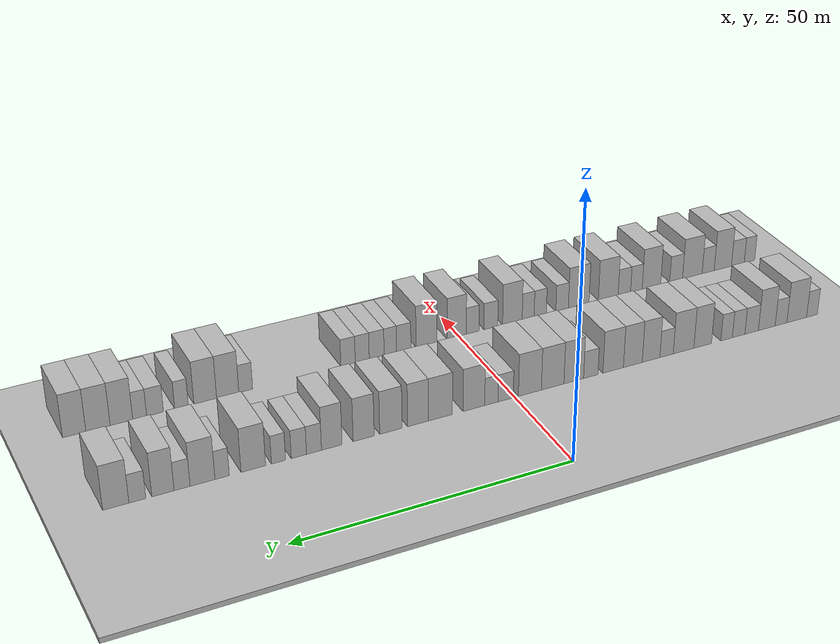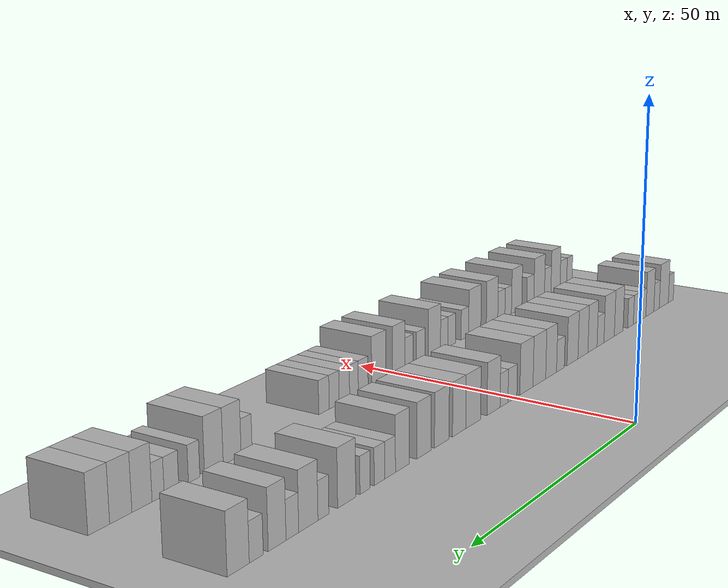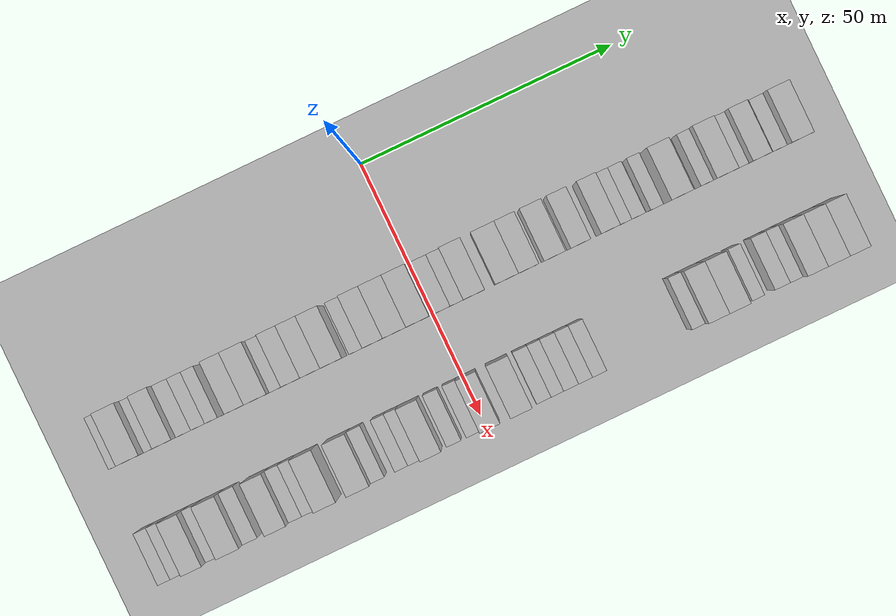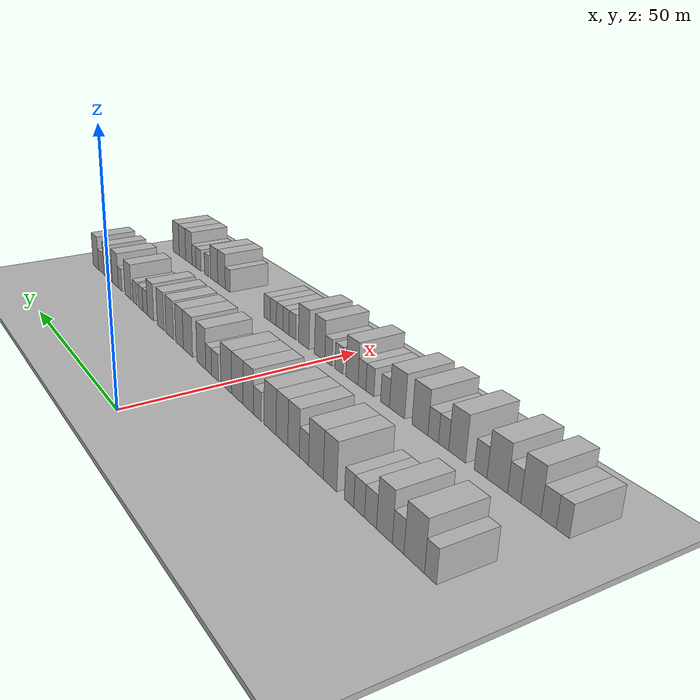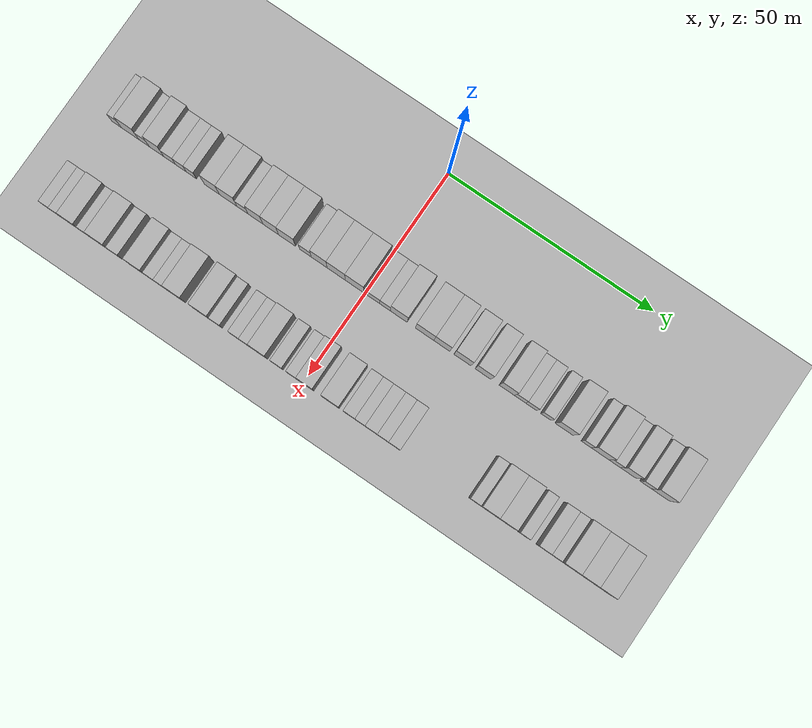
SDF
<sdf version="1.6">
 <world name="default">
  <include><name>ground_plane_1</name><uri>model://HANNAS_ground_plane</uri></include>
  <include>
   <name>ground_plane_2</name>
   <uri>model://HANNAS_ground_plane</uri>
   <pose>100 0 0  0 0 0</pose>
  </include>
  <model name="building_31">
   <static>1</static>
   <pose>25.0000 -61.4542 0 0.000000 0.000000 0.000000</pose>
   <link name="link">
    <pose>0 0 3.00 0 0 0</pose>
    <collision name="collision"><geometry><box><size>10.0000 2.4120 6.0000</size></box></geometry></collision>
    <visual name="visual">
     <cast_shadows>0</cast_shadows>
     <geometry><box><size>10.0000 2.4120 6.0000</size></box></geometry>
     <material>
      <script>
       <uri>model://HANNAS_wall/materials/scripts</uri>
       <uri>model://HANNAS_wall/materials/textures</uri>
       <name>vrc/HANNAS_wall</name>
      </script>
     </material>
    </visual>
   </link>
  </model>
  <model name="building_32">
   <static>1</static>
   <pose>25.0000 -58.0692 0 0.000000 0.000000 0.000000</pose>
   <link name="link">
    <pose>0 0 4.50 0 0 0</pose>
    <collision name="collision"><geometry><box><size>10.0000 4.3581 9.0000</size></box></geometry></collision>
    <visual name="visual">
     <cast_shadows>0</cast_shadows>
     <geometry><box><size>10.0000 4.3581 9.0000</size></box></geometry>
     <material>
      <script>
       <uri>model://HANNAS_wall/materials/scripts</uri>
       <uri>model://HANNAS_wall/materials/textures</uri>
       <name>vrc/HANNAS_wall</name>
      </script>
     </material>
    </visual>
   </link>
  </model>
  <model name="building_33">
   <static>1</static>
   <pose>25.0000 -54.5991 0 0.000000 0.000000 0.000000</pose>
   <link name="link">
    <pose>0 0 3.00 0 0 0</pose>
    <collision name="collision"><geometry><box><size>10.0000 2.5821 6.0000</size></box></geometry></collision>
    <visual name="visual">
     <cast_shadows>0</cast_shadows>
     <geometry><box><size>10.0000 2.5821 6.0000</size></box></geometry>
     <material>
      <script>
       <uri>model://HANNAS_wall/materials/scripts</uri>
       <uri>model://HANNAS_wall/materials/textures</uri>
       <name>vrc/HANNAS_wall</name>
      </script>
     </material>
    </visual>
   </link>
  </model>
  <model name="building_34">
   <static>1</static>
   <pose>25.0000 -51.4746 0 0.000000 0.000000 0.000000</pose>
   <link name="link">
    <pose>0 0 4.50 0 0 0</pose>
    <collision name="collision"><geometry><box><size>10.0000 3.6668 9.0000</size></box></geometry></collision>
    <visual name="visual">
     <cast_shadows>0</cast_shadows>
     <geometry><box><size>10.0000 3.6668 9.0000</size></box></geometry>
     <material>
      <script>
       <uri>model://HANNAS_wall/materials/scripts</uri>
       <uri>model://HANNAS_wall/materials/textures</uri>
       <name>vrc/HANNAS_wall</name>
      </script>
     </material>
    </visual>
   </link>
  </model>
  <model name="building_35">
   <static>1</static>
   <pose>25.0000 -48.1759 0 0.000000 0.000000 0.000000</pose>
   <link name="link">
    <pose>0 0 3.00 0 0 0</pose>
    <collision name="collision"><geometry><box><size>10.0000 2.9306 6.0000</size></box></geometry></collision>
    <visual name="visual">
     <cast_shadows>0</cast_shadows>
     <geometry><box><size>10.0000 2.9306 6.0000</size></box></geometry>
     <material>
      <script>
       <uri>model://HANNAS_wall/materials/scripts</uri>
       <uri>model://HANNAS_wall/materials/textures</uri>
       <name>vrc/HANNAS_wall</name>
      </script>
     </material>
    </visual>
   </link>
  </model>
  <model name="building_36">
   <static>1</static>
   <pose>25.0000 -45.3669 0 0.000000 0.000000 0.000000</pose>
   <link name="link">
    <pose>0 0 3.00 0 0 0</pose>
    <collision name="collision"><geometry><box><size>10.0000 2.6872 6.0000</size></box></geometry></collision>
    <visual name="visual">
     <cast_shadows>0</cast_shadows>
     <geometry><box><size>10.0000 2.6872 6.0000</size></box></geometry>
     <material>
      <script>
       <uri>model://HANNAS_wall/materials/scripts</uri>
       <uri>model://HANNAS_wall/materials/textures</uri>
       <name>vrc/HANNAS_wall</name>
      </script>
     </material>
    </visual>
   </link>
  </model>
  <model name="building_37">
   <static>1</static>
   <pose>25.0000 -42.7870 0 0.000000 0.000000 0.000000</pose>
   <link name="link">
    <pose>0 0 3.00 0 0 0</pose>
    <collision name="collision"><geometry><box><size>10.0000 2.4727 6.0000</size></box></geometry></collision>
    <visual name="visual">
     <cast_shadows>0</cast_shadows>
     <geometry><box><size>10.0000 2.4727 6.0000</size></box></geometry>
     <material>
      <script>
       <uri>model://HANNAS_wall/materials/scripts</uri>
       <uri>model://HANNAS_wall/materials/textures</uri>
       <name>vrc/HANNAS_wall</name>
      </script>
     </material>
    </visual>
   </link>
  </model>
  <model name="building_38">
   <static>1</static>
   <pose>25.0000 -37.6854 0 0.000000 0.000000 0.000000</pose>
   <link name="link">
    <pose>0 0 4.50 0 0 0</pose>
    <collision name="collision"><geometry><box><size>10.0000 3.7306 9.0000</size></box></geometry></collision>
    <visual name="visual">
     <cast_shadows>0</cast_shadows>
     <geometry><box><size>10.0000 3.7306 9.0000</size></box></geometry>
     <material>
      <script>
       <uri>model://HANNAS_wall/materials/scripts</uri>
       <uri>model://HANNAS_wall/materials/textures</uri>
       <name>vrc/HANNAS_wall</name>
      </script>
     </material>
    </visual>
   </link>
  </model>
  <model name="building_39">
   <static>1</static>
   <pose>25.0000 -33.6537 0 0.000000 0.000000 0.000000</pose>
   <link name="link">
    <pose>0 0 4.50 0 0 0</pose>
    <collision name="collision"><geometry><box><size>10.0000 4.3328 9.0000</size></box></geometry></collision>
    <visual name="visual">
     <cast_shadows>0</cast_shadows>
     <geometry><box><size>10.0000 4.3328 9.0000</size></box></geometry>
     <material>
      <script>
       <uri>model://HANNAS_wall/materials/scripts</uri>
       <uri>model://HANNAS_wall/materials/textures</uri>
       <name>vrc/HANNAS_wall</name>
      </script>
     </material>
    </visual>
   </link>
  </model>
  <model name="building_40">
   <static>1</static>
   <pose>25.0000 -30.0961 0 0.000000 0.000000 0.000000</pose>
   <link name="link">
    <pose>0 0 3.00 0 0 0</pose>
    <collision name="collision"><geometry><box><size>10.0000 2.7823 6.0000</size></box></geometry></collision>
    <visual name="visual">
     <cast_shadows>0</cast_shadows>
     <geometry><box><size>10.0000 2.7823 6.0000</size></box></geometry>
     <material>
      <script>
       <uri>model://HANNAS_wall/materials/scripts</uri>
       <uri>model://HANNAS_wall/materials/textures</uri>
       <name>vrc/HANNAS_wall</name>
      </script>
     </material>
    </visual>
   </link>
  </model>
  <model name="building_41">
   <static>1</static>
   <pose>25.0000 -26.8806 0 0.000000 0.000000 0.000000</pose>
   <link name="link">
    <pose>0 0 4.50 0 0 0</pose>
    <collision name="collision"><geometry><box><size>10.0000 3.6487 9.0000</size></box></geometry></collision>
    <visual name="visual">
     <cast_shadows>0</cast_shadows>
     <geometry><box><size>10.0000 3.6487 9.0000</size></box></geometry>
     <material>
      <script>
       <uri>model://HANNAS_wall/materials/scripts</uri>
       <uri>model://HANNAS_wall/materials/textures</uri>
       <name>vrc/HANNAS_wall</name>
      </script>
     </material>
    </visual>
   </link>
  </model>
  <model name="building_42">
   <static>1</static>
   <pose>25.0000 -23.1283 0 0.000000 0.000000 0.000000</pose>
   <link name="link">
    <pose>0 0 4.50 0 0 0</pose>
    <collision name="collision"><geometry><box><size>10.0000 3.8558 9.0000</size></box></geometry></collision>
    <visual name="visual">
     <cast_shadows>0</cast_shadows>
     <geometry><box><size>10.0000 3.8558 9.0000</size></box></geometry>
     <material>
      <script>
       <uri>model://HANNAS_wall/materials/scripts</uri>
       <uri>model://HANNAS_wall/materials/textures</uri>
       <name>vrc/HANNAS_wall</name>
      </script>
     </material>
    </visual>
   </link>
  </model>
  <model name="building_43">
   <static>1</static>
   <pose>25.0000 -19.1201 0 0.000000 0.000000 0.000000</pose>
   <link name="link">
    <pose>0 0 4.50 0 0 0</pose>
    <collision name="collision"><geometry><box><size>10.0000 4.1607 9.0000</size></box></geometry></collision>
    <visual name="visual">
     <cast_shadows>0</cast_shadows>
     <geometry><box><size>10.0000 4.1607 9.0000</size></box></geometry>
     <material>
      <script>
       <uri>model://HANNAS_wall/materials/scripts</uri>
       <uri>model://HANNAS_wall/materials/textures</uri>
       <name>vrc/HANNAS_wall</name>
      </script>
     </material>
    </visual>
   </link>
  </model>
  <model name="building_44">
   <static>1</static>
   <pose>25.0000 -14.6003 0 0.000000 0.000000 0.000000</pose>
   <link name="link">
    <pose>0 0 3.00 0 0 0</pose>
    <collision name="collision"><geometry><box><size>10.0000 2.8789 6.0000</size></box></geometry></collision>
    <visual name="visual">
     <cast_shadows>0</cast_shadows>
     <geometry><box><size>10.0000 2.8789 6.0000</size></box></geometry>
     <material>
      <script>
       <uri>model://HANNAS_wall/materials/scripts</uri>
       <uri>model://HANNAS_wall/materials/textures</uri>
       <name>vrc/HANNAS_wall</name>
      </script>
     </material>
    </visual>
   </link>
  </model>
  <model name="building_45">
   <static>1</static>
   <pose>25.0000 -11.2080 0 0.000000 0.000000 0.000000</pose>
   <link name="link">
    <pose>0 0 4.50 0 0 0</pose>
    <collision name="collision"><geometry><box><size>10.0000 3.9057 9.0000</size></box></geometry></collision>
    <visual name="visual">
     <cast_shadows>0</cast_shadows>
     <geometry><box><size>10.0000 3.9057 9.0000</size></box></geometry>
     <material>
      <script>
       <uri>model://HANNAS_wall/materials/scripts</uri>
       <uri>model://HANNAS_wall/materials/textures</uri>
       <name>vrc/HANNAS_wall</name>
      </script>
     </material>
    </visual>
   </link>
  </model>
  <model name="building_46">
   <static>1</static>
   <pose>25.0000 -7.0304 0 0.000000 0.000000 0.000000</pose>
   <link name="link">
    <pose>0 0 4.50 0 0 0</pose>
    <collision name="collision"><geometry><box><size>10.0000 4.4494 9.0000</size></box></geometry></collision>
    <visual name="visual">
     <cast_shadows>0</cast_shadows>
     <geometry><box><size>10.0000 4.4494 9.0000</size></box></geometry>
     <material>
      <script>
       <uri>model://HANNAS_wall/materials/scripts</uri>
       <uri>model://HANNAS_wall/materials/textures</uri>
       <name>vrc/HANNAS_wall</name>
      </script>
     </material>
    </visual>
   </link>
  </model>
  <model name="building_47">
   <static>1</static>
   <pose>25.0000 -2.5676 0 0.000000 0.000000 0.000000</pose>
   <link name="link">
    <pose>0 0 4.50 0 0 0</pose>
    <collision name="collision"><geometry><box><size>10.0000 4.4762 9.0000</size></box></geometry></collision>
    <visual name="visual">
     <cast_shadows>0</cast_shadows>
     <geometry><box><size>10.0000 4.4762 9.0000</size></box></geometry>
     <material>
      <script>
       <uri>model://HANNAS_wall/materials/scripts</uri>
       <uri>model://HANNAS_wall/materials/textures</uri>
       <name>vrc/HANNAS_wall</name>
      </script>
     </material>
    </visual>
   </link>
  </model>
  <model name="building_48">
   <static>1</static>
   <pose>25.0000 2.1394 0 0.000000 0.000000 0.000000</pose>
   <link name="link">
    <pose>0 0 3.00 0 0 0</pose>
    <collision name="collision"><geometry><box><size>10.0000 2.9378 6.0000</size></box></geometry></collision>
    <visual name="visual">
     <cast_shadows>0</cast_shadows>
     <geometry><box><size>10.0000 2.9378 6.0000</size></box></geometry>
     <material>
      <script>
       <uri>model://HANNAS_wall/materials/scripts</uri>
       <uri>model://HANNAS_wall/materials/textures</uri>
       <name>vrc/HANNAS_wall</name>
      </script>
     </material>
    </visual>
   </link>
  </model>
  <model name="building_49">
   <static>1</static>
   <pose>25.0000 4.8917 0 0.000000 0.000000 0.000000</pose>
   <link name="link">
    <pose>0 0 3.00 0 0 0</pose>
    <collision name="collision"><geometry><box><size>10.0000 2.5667 6.0000</size></box></geometry></collision>
    <visual name="visual">
     <cast_shadows>0</cast_shadows>
     <geometry><box><size>10.0000 2.5667 6.0000</size></box></geometry>
     <material>
      <script>
       <uri>model://HANNAS_wall/materials/scripts</uri>
       <uri>model://HANNAS_wall/materials/textures</uri>
       <name>vrc/HANNAS_wall</name>
      </script>
     </material>
    </visual>
   </link>
  </model>
  <model name="building_50">
   <static>1</static>
   <pose>25.0000 8.2330 0 0.000000 0.000000 0.000000</pose>
   <link name="link">
    <pose>0 0 4.50 0 0 0</pose>
    <collision name="collision"><geometry><box><size>10.0000 4.1159 9.0000</size></box></geometry></collision>
    <visual name="visual">
     <cast_shadows>0</cast_shadows>
     <geometry><box><size>10.0000 4.1159 9.0000</size></box></geometry>
     <material>
      <script>
       <uri>model://HANNAS_wall/materials/scripts</uri>
       <uri>model://HANNAS_wall/materials/textures</uri>
       <name>vrc/HANNAS_wall</name>
      </script>
     </material>
    </visual>
   </link>
  </model>
  <model name="building_51">
   <static>1</static>
   <pose>25.0000 14.5371 0 0.000000 0.000000 0.000000</pose>
   <link name="link">
    <pose>0 0 4.50 0 0 0</pose>
    <collision name="collision"><geometry><box><size>10.0000 4.4922 9.0000</size></box></geometry></collision>
    <visual name="visual">
     <cast_shadows>0</cast_shadows>
     <geometry><box><size>10.0000 4.4922 9.0000</size></box></geometry>
     <material>
      <script>
       <uri>model://HANNAS_wall/materials/scripts</uri>
       <uri>model://HANNAS_wall/materials/textures</uri>
       <name>vrc/HANNAS_wall</name>
      </script>
     </material>
    </visual>
   </link>
  </model>
  <model name="building_52">
   <static>1</static>
   <pose>25.0000 18.7161 0 0.000000 0.000000 0.000000</pose>
   <link name="link">
    <pose>0 0 4.50 0 0 0</pose>
    <collision name="collision"><geometry><box><size>10.0000 3.8659 9.0000</size></box></geometry></collision>
    <visual name="visual">
     <cast_shadows>0</cast_shadows>
     <geometry><box><size>10.0000 3.8659 9.0000</size></box></geometry>
     <material>
      <script>
       <uri>model://HANNAS_wall/materials/scripts</uri>
       <uri>model://HANNAS_wall/materials/textures</uri>
       <name>vrc/HANNAS_wall</name>
      </script>
     </material>
    </visual>
   </link>
  </model>
  <model name="building_53">
   <static>1</static>
   <pose>25.0000 23.7026 0 0.000000 0.000000 0.000000</pose>
   <link name="link">
    <pose>0 0 4.50 0 0 0</pose>
    <collision name="collision"><geometry><box><size>10.0000 4.1071 9.0000</size></box></geometry></collision>
    <visual name="visual">
     <cast_shadows>0</cast_shadows>
     <geometry><box><size>10.0000 4.1071 9.0000</size></box></geometry>
     <material>
      <script>
       <uri>model://HANNAS_wall/materials/scripts</uri>
       <uri>model://HANNAS_wall/materials/textures</uri>
       <name>vrc/HANNAS_wall</name>
      </script>
     </material>
    </visual>
   </link>
  </model>
  <model name="building_54">
   <static>1</static>
   <pose>25.0000 28.6602 0 0.000000 0.000000 0.000000</pose>
   <link name="link">
    <pose>0 0 4.50 0 0 0</pose>
    <collision name="collision"><geometry><box><size>10.0000 3.8081 9.0000</size></box></geometry></collision>
    <visual name="visual">
     <cast_shadows>0</cast_shadows>
     <geometry><box><size>10.0000 3.8081 9.0000</size></box></geometry>
     <material>
      <script>
       <uri>model://HANNAS_wall/materials/scripts</uri>
       <uri>model://HANNAS_wall/materials/textures</uri>
       <name>vrc/HANNAS_wall</name>
      </script>
     </material>
    </visual>
   </link>
  </model>
  <model name="building_55">
   <static>1</static>
   <pose>25.0000 34.3978 0 0.000000 0.000000 0.000000</pose>
   <link name="link">
    <pose>0 0 4.50 0 0 0</pose>
    <collision name="collision"><geometry><box><size>10.0000 3.6669 9.0000</size></box></geometry></collision>
    <visual name="visual">
     <cast_shadows>0</cast_shadows>
     <geometry><box><size>10.0000 3.6669 9.0000</size></box></geometry>
     <material>
      <script>
       <uri>model://HANNAS_wall/materials/scripts</uri>
       <uri>model://HANNAS_wall/materials/textures</uri>
       <name>vrc/HANNAS_wall</name>
      </script>
     </material>
    </visual>
   </link>
  </model>
  <model name="building_56">
   <static>1</static>
   <pose>25.0000 37.5584 0 0.000000 0.000000 0.000000</pose>
   <link name="link">
    <pose>0 0 3.00 0 0 0</pose>
    <collision name="collision"><geometry><box><size>10.0000 2.6543 6.0000</size></box></geometry></collision>
    <visual name="visual">
     <cast_shadows>0</cast_shadows>
     <geometry><box><size>10.0000 2.6543 6.0000</size></box></geometry>
     <material>
      <script>
       <uri>model://HANNAS_wall/materials/scripts</uri>
       <uri>model://HANNAS_wall/materials/textures</uri>
       <name>vrc/HANNAS_wall</name>
      </script>
     </material>
    </visual>
   </link>
  </model>
  <model name="building_57">
   <static>1</static>
   <pose>25.0000 40.2219 0 0.000000 0.000000 0.000000</pose>
   <link name="link">
    <pose>0 0 3.00 0 0 0</pose>
    <collision name="collision"><geometry><box><size>10.0000 2.6727 6.0000</size></box></geometry></collision>
    <visual name="visual">
     <cast_shadows>0</cast_shadows>
     <geometry><box><size>10.0000 2.6727 6.0000</size></box></geometry>
     <material>
      <script>
       <uri>model://HANNAS_wall/materials/scripts</uri>
       <uri>model://HANNAS_wall/materials/textures</uri>
       <name>vrc/HANNAS_wall</name>
      </script>
     </material>
    </visual>
   </link>
  </model>
  <model name="building_58">
   <static>1</static>
   <pose>25.0000 43.7932 0 0.000000 0.000000 0.000000</pose>
   <link name="link">
    <pose>0 0 3.00 0 0 0</pose>
    <collision name="collision"><geometry><box><size>10.0000 2.4699 6.0000</size></box></geometry></collision>
    <visual name="visual">
     <cast_shadows>0</cast_shadows>
     <geometry><box><size>10.0000 2.4699 6.0000</size></box></geometry>
     <material>
      <script>
       <uri>model://HANNAS_wall/materials/scripts</uri>
       <uri>model://HANNAS_wall/materials/textures</uri>
       <name>vrc/HANNAS_wall</name>
      </script>
     </material>
    </visual>
   </link>
  </model>
  <model name="building_59">
   <static>1</static>
   <pose>25.0000 48.1494 0 0.000000 0.000000 0.000000</pose>
   <link name="link">
    <pose>0 0 4.50 0 0 0</pose>
    <collision name="collision"><geometry><box><size>10.0000 4.2424 9.0000</size></box></geometry></collision>
    <visual name="visual">
     <cast_shadows>0</cast_shadows>
     <geometry><box><size>10.0000 4.2424 9.0000</size></box></geometry>
     <material>
      <script>
       <uri>model://HANNAS_wall/materials/scripts</uri>
       <uri>model://HANNAS_wall/materials/textures</uri>
       <name>vrc/HANNAS_wall</name>
      </script>
     </material>
    </visual>
   </link>
  </model>
  <model name="building_60">
   <static>1</static>
   <pose>25.0000 53.4902 0 0.000000 0.000000 0.000000</pose>
   <link name="link">
    <pose>0 0 3.00 0 0 0</pose>
    <collision name="collision"><geometry><box><size>10.0000 2.4393 6.0000</size></box></geometry></collision>
    <visual name="visual">
     <cast_shadows>0</cast_shadows>
     <geometry><box><size>10.0000 2.4393 6.0000</size></box></geometry>
     <material>
      <script>
       <uri>model://HANNAS_wall/materials/scripts</uri>
       <uri>model://HANNAS_wall/materials/textures</uri>
       <name>vrc/HANNAS_wall</name>
      </script>
     </material>
    </visual>
   </link>
  </model>
  <model name="building_61">
   <static>1</static>
   <pose>25.0000 56.8058 0 0.000000 0.000000 0.000000</pose>
   <link name="link">
    <pose>0 0 4.50 0 0 0</pose>
    <collision name="collision"><geometry><box><size>10.0000 4.1919 9.0000</size></box></geometry></collision>
    <visual name="visual">
     <cast_shadows>0</cast_shadows>
     <geometry><box><size>10.0000 4.1919 9.0000</size></box></geometry>
     <material>
      <script>
       <uri>model://HANNAS_wall/materials/scripts</uri>
       <uri>model://HANNAS_wall/materials/textures</uri>
       <name>vrc/HANNAS_wall</name>
      </script>
     </material>
    </visual>
   </link>
  </model>
  <model name="building_62">
   <static>1</static>
   <pose>25.0000 60.2417 0 0.000000 0.000000 0.000000</pose>
   <link name="link">
    <pose>0 0 3.00 0 0 0</pose>
    <collision name="collision"><geometry><box><size>10.0000 2.6799 6.0000</size></box></geometry></collision>
    <visual name="visual">
     <cast_shadows>0</cast_shadows>
     <geometry><box><size>10.0000 2.6799 6.0000</size></box></geometry>
     <material>
      <script>
       <uri>model://HANNAS_wall/materials/scripts</uri>
       <uri>model://HANNAS_wall/materials/textures</uri>
       <name>vrc/HANNAS_wall</name>
      </script>
     </material>
    </visual>
   </link>
  </model>
  <model name="building_63">
   <static>1</static>
   <pose>25.0000 63.4194 0 0.000000 0.000000 0.000000</pose>
   <link name="link">
    <pose>0 0 4.50 0 0 0</pose>
    <collision name="collision"><geometry><box><size>10.0000 3.6755 9.0000</size></box></geometry></collision>
    <visual name="visual">
     <cast_shadows>0</cast_shadows>
     <geometry><box><size>10.0000 3.6755 9.0000</size></box></geometry>
     <material>
      <script>
       <uri>model://HANNAS_wall/materials/scripts</uri>
       <uri>model://HANNAS_wall/materials/textures</uri>
       <name>vrc/HANNAS_wall</name>
      </script>
     </material>
    </visual>
   </link>
  </model>
  <model name="building_64">
   <static>1</static>
   <pose>25.0000 67.6411 0 0.000000 0.000000 0.000000</pose>
   <link name="link">
    <pose>0 0 3.00 0 0 0</pose>
    <collision name="collision"><geometry><box><size>10.0000 2.7679 6.0000</size></box></geometry></collision>
    <visual name="visual">
     <cast_shadows>0</cast_shadows>
     <geometry><box><size>10.0000 2.7679 6.0000</size></box></geometry>
     <material>
      <script>
       <uri>model://HANNAS_wall/materials/scripts</uri>
       <uri>model://HANNAS_wall/materials/textures</uri>
       <name>vrc/HANNAS_wall</name>
      </script>
     </material>
    </visual>
   </link>
  </model>
  <model name="building_65">
   <static>1</static>
   <pose>25.0000 71.1598 0 0.000000 0.000000 0.000000</pose>
   <link name="link">
    <pose>0 0 4.50 0 0 0</pose>
    <collision name="collision"><geometry><box><size>10.0000 4.2696 9.0000</size></box></geometry></collision>
    <visual name="visual">
     <cast_shadows>0</cast_shadows>
     <geometry><box><size>10.0000 4.2696 9.0000</size></box></geometry>
     <material>
      <script>
       <uri>model://HANNAS_wall/materials/scripts</uri>
       <uri>model://HANNAS_wall/materials/textures</uri>
       <name>vrc/HANNAS_wall</name>
      </script>
     </material>
    </visual>
   </link>
  </model>
  <model name="building_141">
   <static>1</static>
   <pose>47.0000 -62.4681 0 0.000000 0.000000 0.000000</pose>
   <link name="link">
    <pose>0 0 3.00 0 0 0</pose>
    <collision name="collision"><geometry><box><size>10.0000 2.4110 6.0000</size></box></geometry></collision>
    <visual name="visual">
     <cast_shadows>0</cast_shadows>
     <geometry><box><size>10.0000 2.4110 6.0000</size></box></geometry>
     <material>
      <script>
       <uri>model://HANNAS_wall/materials/scripts</uri>
       <uri>model://HANNAS_wall/materials/textures</uri>
       <name>vrc/HANNAS_wall</name>
      </script>
     </material>
    </visual>
   </link>
  </model>
  <model name="building_142">
   <static>1</static>
   <pose>47.0000 -59.7925 0 0.000000 0.000000 0.000000</pose>
   <link name="link">
    <pose>0 0 3.00 0 0 0</pose>
    <collision name="collision"><geometry><box><size>10.0000 2.9401 6.0000</size></box></geometry></collision>
    <visual name="visual">
     <cast_shadows>0</cast_shadows>
     <geometry><box><size>10.0000 2.9401 6.0000</size></box></geometry>
     <material>
      <script>
       <uri>model://HANNAS_wall/materials/scripts</uri>
       <uri>model://HANNAS_wall/materials/textures</uri>
       <name>vrc/HANNAS_wall</name>
      </script>
     </material>
    </visual>
   </link>
  </model>
  <model name="building_143">
   <static>1</static>
   <pose>47.0000 -56.3538 0 0.000000 0.000000 0.000000</pose>
   <link name="link">
    <pose>0 0 4.50 0 0 0</pose>
    <collision name="collision"><geometry><box><size>10.0000 3.9374 9.0000</size></box></geometry></collision>
    <visual name="visual">
     <cast_shadows>0</cast_shadows>
     <geometry><box><size>10.0000 3.9374 9.0000</size></box></geometry>
     <material>
      <script>
       <uri>model://HANNAS_wall/materials/scripts</uri>
       <uri>model://HANNAS_wall/materials/textures</uri>
       <name>vrc/HANNAS_wall</name>
      </script>
     </material>
    </visual>
   </link>
  </model>
  <model name="building_144">
   <static>1</static>
   <pose>47.0000 -53.0163 0 0.000000 0.000000 0.000000</pose>
   <link name="link">
    <pose>0 0 3.00 0 0 0</pose>
    <collision name="collision"><geometry><box><size>10.0000 2.7375 6.0000</size></box></geometry></collision>
    <visual name="visual">
     <cast_shadows>0</cast_shadows>
     <geometry><box><size>10.0000 2.7375 6.0000</size></box></geometry>
     <material>
      <script>
       <uri>model://HANNAS_wall/materials/scripts</uri>
       <uri>model://HANNAS_wall/materials/textures</uri>
       <name>vrc/HANNAS_wall</name>
      </script>
     </material>
    </visual>
   </link>
  </model>
  <model name="building_145">
   <static>1</static>
   <pose>47.0000 -49.4365 0 0.000000 0.000000 0.000000</pose>
   <link name="link">
    <pose>0 0 4.50 0 0 0</pose>
    <collision name="collision"><geometry><box><size>10.0000 4.4221 9.0000</size></box></geometry></collision>
    <visual name="visual">
     <cast_shadows>0</cast_shadows>
     <geometry><box><size>10.0000 4.4221 9.0000</size></box></geometry>
     <material>
      <script>
       <uri>model://HANNAS_wall/materials/scripts</uri>
       <uri>model://HANNAS_wall/materials/textures</uri>
       <name>vrc/HANNAS_wall</name>
      </script>
     </material>
    </visual>
   </link>
  </model>
  <model name="building_146">
   <static>1</static>
   <pose>47.0000 -45.7912 0 0.000000 0.000000 0.000000</pose>
   <link name="link">
    <pose>0 0 3.00 0 0 0</pose>
    <collision name="collision"><geometry><box><size>10.0000 2.8685 6.0000</size></box></geometry></collision>
    <visual name="visual">
     <cast_shadows>0</cast_shadows>
     <geometry><box><size>10.0000 2.8685 6.0000</size></box></geometry>
     <material>
      <script>
       <uri>model://HANNAS_wall/materials/scripts</uri>
       <uri>model://HANNAS_wall/materials/textures</uri>
       <name>vrc/HANNAS_wall</name>
      </script>
     </material>
    </visual>
   </link>
  </model>
  <model name="building_147">
   <static>1</static>
   <pose>47.0000 -40.3137 0 0.000000 0.000000 0.000000</pose>
   <link name="link">
    <pose>0 0 4.50 0 0 0</pose>
    <collision name="collision"><geometry><box><size>10.0000 4.0865 9.0000</size></box></geometry></collision>
    <visual name="visual">
     <cast_shadows>0</cast_shadows>
     <geometry><box><size>10.0000 4.0865 9.0000</size></box></geometry>
     <material>
      <script>
       <uri>model://HANNAS_wall/materials/scripts</uri>
       <uri>model://HANNAS_wall/materials/textures</uri>
       <name>vrc/HANNAS_wall</name>
      </script>
     </material>
    </visual>
   </link>
  </model>
  <model name="building_148">
   <static>1</static>
   <pose>47.0000 -36.9981 0 0.000000 0.000000 0.000000</pose>
   <link name="link">
    <pose>0 0 3.00 0 0 0</pose>
    <collision name="collision"><geometry><box><size>10.0000 2.5446 6.0000</size></box></geometry></collision>
    <visual name="visual">
     <cast_shadows>0</cast_shadows>
     <geometry><box><size>10.0000 2.5446 6.0000</size></box></geometry>
     <material>
      <script>
       <uri>model://HANNAS_wall/materials/scripts</uri>
       <uri>model://HANNAS_wall/materials/textures</uri>
       <name>vrc/HANNAS_wall</name>
      </script>
     </material>
    </visual>
   </link>
  </model>
  <model name="building_149">
   <static>1</static>
   <pose>47.0000 -34.3710 0 0.000000 0.000000 0.000000</pose>
   <link name="link">
    <pose>0 0 3.00 0 0 0</pose>
    <collision name="collision"><geometry><box><size>10.0000 2.7097 6.0000</size></box></geometry></collision>
    <visual name="visual">
     <cast_shadows>0</cast_shadows>
     <geometry><box><size>10.0000 2.7097 6.0000</size></box></geometry>
     <material>
      <script>
       <uri>model://HANNAS_wall/materials/scripts</uri>
       <uri>model://HANNAS_wall/materials/textures</uri>
       <name>vrc/HANNAS_wall</name>
      </script>
     </material>
    </visual>
   </link>
  </model>
  <model name="building_150">
   <static>1</static>
   <pose>47.0000 -30.8762 0 0.000000 0.000000 0.000000</pose>
   <link name="link">
    <pose>0 0 4.50 0 0 0</pose>
    <collision name="collision"><geometry><box><size>10.0000 4.2799 9.0000</size></box></geometry></collision>
    <visual name="visual">
     <cast_shadows>0</cast_shadows>
     <geometry><box><size>10.0000 4.2799 9.0000</size></box></geometry>
     <material>
      <script>
       <uri>model://HANNAS_wall/materials/scripts</uri>
       <uri>model://HANNAS_wall/materials/textures</uri>
       <name>vrc/HANNAS_wall</name>
      </script>
     </material>
    </visual>
   </link>
  </model>
  <model name="building_151">
   <static>1</static>
   <pose>47.0000 -24.5383 0 0.000000 0.000000 0.000000</pose>
   <link name="link">
    <pose>0 0 4.50 0 0 0</pose>
    <collision name="collision"><geometry><box><size>10.0000 4.3958 9.0000</size></box></geometry></collision>
    <visual name="visual">
     <cast_shadows>0</cast_shadows>
     <geometry><box><size>10.0000 4.3958 9.0000</size></box></geometry>
     <material>
      <script>
       <uri>model://HANNAS_wall/materials/scripts</uri>
       <uri>model://HANNAS_wall/materials/textures</uri>
       <name>vrc/HANNAS_wall</name>
      </script>
     </material>
    </visual>
   </link>
  </model>
  <model name="building_152">
   <static>1</static>
   <pose>47.0000 -21.0120 0 0.000000 0.000000 0.000000</pose>
   <link name="link">
    <pose>0 0 3.00 0 0 0</pose>
    <collision name="collision"><geometry><box><size>10.0000 2.6568 6.0000</size></box></geometry></collision>
    <visual name="visual">
     <cast_shadows>0</cast_shadows>
     <geometry><box><size>10.0000 2.6568 6.0000</size></box></geometry>
     <material>
      <script>
       <uri>model://HANNAS_wall/materials/scripts</uri>
       <uri>model://HANNAS_wall/materials/textures</uri>
       <name>vrc/HANNAS_wall</name>
      </script>
     </material>
    </visual>
   </link>
  </model>
  <model name="building_153">
   <static>1</static>
   <pose>47.0000 -16.4037 0 0.000000 0.000000 0.000000</pose>
   <link name="link">
    <pose>0 0 3.00 0 0 0</pose>
    <collision name="collision"><geometry><box><size>10.0000 2.5599 6.0000</size></box></geometry></collision>
    <visual name="visual">
     <cast_shadows>0</cast_shadows>
     <geometry><box><size>10.0000 2.5599 6.0000</size></box></geometry>
     <material>
      <script>
       <uri>model://HANNAS_wall/materials/scripts</uri>
       <uri>model://HANNAS_wall/materials/textures</uri>
       <name>vrc/HANNAS_wall</name>
      </script>
     </material>
    </visual>
   </link>
  </model>
  <model name="building_154">
   <static>1</static>
   <pose>47.0000 -13.8777 0 0.000000 0.000000 0.000000</pose>
   <link name="link">
    <pose>0 0 3.00 0 0 0</pose>
    <collision name="collision"><geometry><box><size>10.0000 2.4921 6.0000</size></box></geometry></collision>
    <visual name="visual">
     <cast_shadows>0</cast_shadows>
     <geometry><box><size>10.0000 2.4921 6.0000</size></box></geometry>
     <material>
      <script>
       <uri>model://HANNAS_wall/materials/scripts</uri>
       <uri>model://HANNAS_wall/materials/textures</uri>
       <name>vrc/HANNAS_wall</name>
      </script>
     </material>
    </visual>
   </link>
  </model>
  <model name="building_155">
   <static>1</static>
   <pose>47.0000 -10.6126 0 0.000000 0.000000 0.000000</pose>
   <link name="link">
    <pose>0 0 4.50 0 0 0</pose>
    <collision name="collision"><geometry><box><size>10.0000 4.0379 9.0000</size></box></geometry></collision>
    <visual name="visual">
     <cast_shadows>0</cast_shadows>
     <geometry><box><size>10.0000 4.0379 9.0000</size></box></geometry>
     <material>
      <script>
       <uri>model://HANNAS_wall/materials/scripts</uri>
       <uri>model://HANNAS_wall/materials/textures</uri>
       <name>vrc/HANNAS_wall</name>
      </script>
     </material>
    </visual>
   </link>
  </model>
  <model name="building_156">
   <static>1</static>
   <pose>47.0000 -6.1917 0 0.000000 0.000000 0.000000</pose>
   <link name="link">
    <pose>0 0 3.00 0 0 0</pose>
    <collision name="collision"><geometry><box><size>10.0000 2.8040 6.0000</size></box></geometry></collision>
    <visual name="visual">
     <cast_shadows>0</cast_shadows>
     <geometry><box><size>10.0000 2.8040 6.0000</size></box></geometry>
     <material>
      <script>
       <uri>model://HANNAS_wall/materials/scripts</uri>
       <uri>model://HANNAS_wall/materials/textures</uri>
       <name>vrc/HANNAS_wall</name>
      </script>
     </material>
    </visual>
   </link>
  </model>
  <model name="building_157">
   <static>1</static>
   <pose>47.0000 -2.4931 0 0.000000 0.000000 0.000000</pose>
   <link name="link">
    <pose>0 0 3.00 0 0 0</pose>
    <collision name="collision"><geometry><box><size>10.0000 2.5930 6.0000</size></box></geometry></collision>
    <visual name="visual">
     <cast_shadows>0</cast_shadows>
     <geometry><box><size>10.0000 2.5930 6.0000</size></box></geometry>
     <material>
      <script>
       <uri>model://HANNAS_wall/materials/scripts</uri>
       <uri>model://HANNAS_wall/materials/textures</uri>
       <name>vrc/HANNAS_wall</name>
      </script>
     </material>
    </visual>
   </link>
  </model>
  <model name="building_158">
   <static>1</static>
   <pose>47.0000 0.7447 0 0.000000 0.000000 0.000000</pose>
   <link name="link">
    <pose>0 0 4.50 0 0 0</pose>
    <collision name="collision"><geometry><box><size>10.0000 3.8827 9.0000</size></box></geometry></collision>
    <visual name="visual">
     <cast_shadows>0</cast_shadows>
     <geometry><box><size>10.0000 3.8827 9.0000</size></box></geometry>
     <material>
      <script>
       <uri>model://HANNAS_wall/materials/scripts</uri>
       <uri>model://HANNAS_wall/materials/textures</uri>
       <name>vrc/HANNAS_wall</name>
      </script>
     </material>
    </visual>
   </link>
  </model>
  <model name="building_159">
   <static>1</static>
   <pose>47.0000 6.7826 0 0.000000 0.000000 0.000000</pose>
   <link name="link">
    <pose>0 0 4.50 0 0 0</pose>
    <collision name="collision"><geometry><box><size>10.0000 4.1931 9.0000</size></box></geometry></collision>
    <visual name="visual">
     <cast_shadows>0</cast_shadows>
     <geometry><box><size>10.0000 4.1931 9.0000</size></box></geometry>
     <material>
      <script>
       <uri>model://HANNAS_wall/materials/scripts</uri>
       <uri>model://HANNAS_wall/materials/textures</uri>
       <name>vrc/HANNAS_wall</name>
      </script>
     </material>
    </visual>
   </link>
  </model>
  <model name="building_160">
   <static>1</static>
   <pose>47.0000 11.2825 0 0.000000 0.000000 0.000000</pose>
   <link name="link">
    <pose>0 0 3.00 0 0 0</pose>
    <collision name="collision"><geometry><box><size>10.0000 2.8067 6.0000</size></box></geometry></collision>
    <visual name="visual">
     <cast_shadows>0</cast_shadows>
     <geometry><box><size>10.0000 2.8067 6.0000</size></box></geometry>
     <material>
      <script>
       <uri>model://HANNAS_wall/materials/scripts</uri>
       <uri>model://HANNAS_wall/materials/textures</uri>
       <name>vrc/HANNAS_wall</name>
      </script>
     </material>
    </visual>
   </link>
  </model>
  <model name="building_161">
   <static>1</static>
   <pose>47.0000 13.9107 0 0.000000 0.000000 0.000000</pose>
   <link name="link">
    <pose>0 0 3.00 0 0 0</pose>
    <collision name="collision"><geometry><box><size>10.0000 2.4496 6.0000</size></box></geometry></collision>
    <visual name="visual">
     <cast_shadows>0</cast_shadows>
     <geometry><box><size>10.0000 2.4496 6.0000</size></box></geometry>
     <material>
      <script>
       <uri>model://HANNAS_wall/materials/scripts</uri>
       <uri>model://HANNAS_wall/materials/textures</uri>
       <name>vrc/HANNAS_wall</name>
      </script>
     </material>
    </visual>
   </link>
  </model>
  <model name="building_162">
   <static>1</static>
   <pose>47.0000 16.5865 0 0.000000 0.000000 0.000000</pose>
   <link name="link">
    <pose>0 0 3.00 0 0 0</pose>
    <collision name="collision"><geometry><box><size>10.0000 2.9019 6.0000</size></box></geometry></collision>
    <visual name="visual">
     <cast_shadows>0</cast_shadows>
     <geometry><box><size>10.0000 2.9019 6.0000</size></box></geometry>
     <material>
      <script>
       <uri>model://HANNAS_wall/materials/scripts</uri>
       <uri>model://HANNAS_wall/materials/textures</uri>
       <name>vrc/HANNAS_wall</name>
      </script>
     </material>
    </visual>
   </link>
  </model>
  <model name="building_163">
   <static>1</static>
   <pose>47.0000 19.3811 0 0.000000 0.000000 0.000000</pose>
   <link name="link">
    <pose>0 0 3.00 0 0 0</pose>
    <collision name="collision"><geometry><box><size>10.0000 2.6873 6.0000</size></box></geometry></collision>
    <visual name="visual">
     <cast_shadows>0</cast_shadows>
     <geometry><box><size>10.0000 2.6873 6.0000</size></box></geometry>
     <material>
      <script>
       <uri>model://HANNAS_wall/materials/scripts</uri>
       <uri>model://HANNAS_wall/materials/textures</uri>
       <name>vrc/HANNAS_wall</name>
      </script>
     </material>
    </visual>
   </link>
  </model>
  <model name="building_164">
   <static>1</static>
   <pose>47.0000 22.1163 0 0.000000 0.000000 0.000000</pose>
   <link name="link">
    <pose>0 0 3.00 0 0 0</pose>
    <collision name="collision"><geometry><box><size>10.0000 2.7832 6.0000</size></box></geometry></collision>
    <visual name="visual">
     <cast_shadows>0</cast_shadows>
     <geometry><box><size>10.0000 2.7832 6.0000</size></box></geometry>
     <material>
      <script>
       <uri>model://HANNAS_wall/materials/scripts</uri>
       <uri>model://HANNAS_wall/materials/textures</uri>
       <name>vrc/HANNAS_wall</name>
      </script>
     </material>
    </visual>
   </link>
  </model>
  <model name="building_165">
   <static>1</static>
   <pose>47.0000 41.3169 0 0.000000 0.000000 0.000000</pose>
   <link name="link">
    <pose>0 0 3.00 0 0 0</pose>
    <collision name="collision"><geometry><box><size>10.0000 2.5393 6.0000</size></box></geometry></collision>
    <visual name="visual">
     <cast_shadows>0</cast_shadows>
     <geometry><box><size>10.0000 2.5393 6.0000</size></box></geometry>
     <material>
      <script>
       <uri>model://HANNAS_wall/materials/scripts</uri>
       <uri>model://HANNAS_wall/materials/textures</uri>
       <name>vrc/HANNAS_wall</name>
      </script>
     </material>
    </visual>
   </link>
  </model>
  <model name="building_166">
   <static>1</static>
   <pose>47.0000 44.6079 0 0.000000 0.000000 0.000000</pose>
   <link name="link">
    <pose>0 0 4.50 0 0 0</pose>
    <collision name="collision"><geometry><box><size>10.0000 4.0427 9.0000</size></box></geometry></collision>
    <visual name="visual">
     <cast_shadows>0</cast_shadows>
     <geometry><box><size>10.0000 4.0427 9.0000</size></box></geometry>
     <material>
      <script>
       <uri>model://HANNAS_wall/materials/scripts</uri>
       <uri>model://HANNAS_wall/materials/textures</uri>
       <name>vrc/HANNAS_wall</name>
      </script>
     </material>
    </visual>
   </link>
  </model>
  <model name="building_167">
   <static>1</static>
   <pose>47.0000 48.6747 0 0.000000 0.000000 0.000000</pose>
   <link name="link">
    <pose>0 0 4.50 0 0 0</pose>
    <collision name="collision"><geometry><box><size>10.0000 4.0909 9.0000</size></box></geometry></collision>
    <visual name="visual">
     <cast_shadows>0</cast_shadows>
     <geometry><box><size>10.0000 4.0909 9.0000</size></box></geometry>
     <material>
      <script>
       <uri>model://HANNAS_wall/materials/scripts</uri>
       <uri>model://HANNAS_wall/materials/textures</uri>
       <name>vrc/HANNAS_wall</name>
      </script>
     </material>
    </visual>
   </link>
  </model>
  <model name="building_168">
   <static>1</static>
   <pose>47.0000 52.9287 0 0.000000 0.000000 0.000000</pose>
   <link name="link">
    <pose>0 0 3.00 0 0 0</pose>
    <collision name="collision"><geometry><box><size>10.0000 2.4172 6.0000</size></box></geometry></collision>
    <visual name="visual">
     <cast_shadows>0</cast_shadows>
     <geometry><box><size>10.0000 2.4172 6.0000</size></box></geometry>
     <material>
      <script>
       <uri>model://HANNAS_wall/materials/scripts</uri>
       <uri>model://HANNAS_wall/materials/textures</uri>
       <name>vrc/HANNAS_wall</name>
      </script>
     </material>
    </visual>
   </link>
  </model>
  <model name="building_169">
   <static>1</static>
   <pose>47.0000 57.6227 0 0.000000 0.000000 0.000000</pose>
   <link name="link">
    <pose>0 0 3.00 0 0 0</pose>
    <collision name="collision"><geometry><box><size>10.0000 2.9707 6.0000</size></box></geometry></collision>
    <visual name="visual">
     <cast_shadows>0</cast_shadows>
     <geometry><box><size>10.0000 2.9707 6.0000</size></box></geometry>
     <material>
      <script>
       <uri>model://HANNAS_wall/materials/scripts</uri>
       <uri>model://HANNAS_wall/materials/textures</uri>
       <name>vrc/HANNAS_wall</name>
      </script>
     </material>
    </visual>
   </link>
  </model>
  <model name="building_170">
   <static>1</static>
   <pose>47.0000 60.3257 0 0.000000 0.000000 0.000000</pose>
   <link name="link">
    <pose>0 0 3.00 0 0 0</pose>
    <collision name="collision"><geometry><box><size>10.0000 2.4353 6.0000</size></box></geometry></collision>
    <visual name="visual">
     <cast_shadows>0</cast_shadows>
     <geometry><box><size>10.0000 2.4353 6.0000</size></box></geometry>
     <material>
      <script>
       <uri>model://HANNAS_wall/materials/scripts</uri>
       <uri>model://HANNAS_wall/materials/textures</uri>
       <name>vrc/HANNAS_wall</name>
      </script>
     </material>
    </visual>
   </link>
  </model>
  <model name="building_171">
   <static>1</static>
   <pose>47.0000 63.5061 0 0.000000 0.000000 0.000000</pose>
   <link name="link">
    <pose>0 0 4.50 0 0 0</pose>
    <collision name="collision"><geometry><box><size>10.0000 3.9254 9.0000</size></box></geometry></collision>
    <visual name="visual">
     <cast_shadows>0</cast_shadows>
     <geometry><box><size>10.0000 3.9254 9.0000</size></box></geometry>
     <material>
      <script>
       <uri>model://HANNAS_wall/materials/scripts</uri>
       <uri>model://HANNAS_wall/materials/textures</uri>
       <name>vrc/HANNAS_wall</name>
      </script>
     </material>
    </visual>
   </link>
  </model>
  <model name="building_172">
   <static>1</static>
   <pose>47.0000 67.5607 0 0.000000 0.000000 0.000000</pose>
   <link name="link">
    <pose>0 0 4.50 0 0 0</pose>
    <collision name="collision"><geometry><box><size>10.0000 4.1838 9.0000</size></box></geometry></collision>
    <visual name="visual">
     <cast_shadows>0</cast_shadows>
     <geometry><box><size>10.0000 4.1838 9.0000</size></box></geometry>
     <material>
      <script>
       <uri>model://HANNAS_wall/materials/scripts</uri>
       <uri>model://HANNAS_wall/materials/textures</uri>
       <name>vrc/HANNAS_wall</name>
      </script>
     </material>
    </visual>
   </link>
  </model>
  <model name="building_173">
   <static>1</static>
   <pose>47.0000 71.6386 0 0.000000 0.000000 0.000000</pose>
   <link name="link">
    <pose>0 0 4.50 0 0 0</pose>
    <collision name="collision"><geometry><box><size>10.0000 3.9720 9.0000</size></box></geometry></collision>
    <visual name="visual">
     <cast_shadows>0</cast_shadows>
     <geometry><box><size>10.0000 3.9720 9.0000</size></box></geometry>
     <material>
      <script>
       <uri>model://HANNAS_wall/materials/scripts</uri>
       <uri>model://HANNAS_wall/materials/textures</uri>
       <name>vrc/HANNAS_wall</name>
      </script>
     </material>
    </visual>
   </link>
  </model>
 </world>
</sdf>
